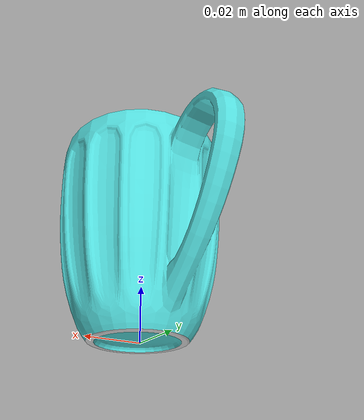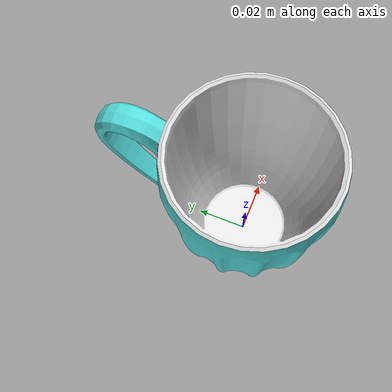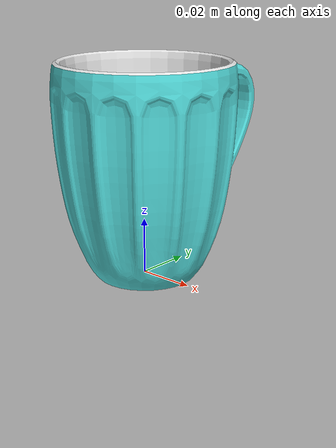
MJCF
<mujoco model="mug_a">
  <default>
    <default class="visual">
      <geom group="1" type="mesh" contype="0" conaffinity="0"/>
    </default>
    <default class="collision">
      <geom group="0" type="mesh" solref="0.01 1" solimp="0.99 0.99 0.01" margin="0.001" priority="1" friction="5 2 0.0001"/>
    </default>
  </default>
  <asset>
    <material name="MugColor5" specular="0.5" shininess="0.5" rgba="0.32 0.8509 0.8509 1.000000"/>
    <material name="MugWhite" specular="0.5" shininess="0.5" rgba="0.896395 0.896395 0.896395 1.000000"/>
    <mesh file="mug_a_0.obj" name="mug_a_0" scale="0.7 0.7 0.7"/>
    <mesh file="mug_a_1.obj" name="mug_a_1" scale="0.7 0.7 0.7"/>
    <mesh file="mug_a_collision_0.obj" name="mug_a_collision_0" scale="0.7 0.7 0.7"/>
    <mesh file="mug_a_collision_1.obj" name="mug_a_collision_1" scale="0.7 0.7 0.7"/>
    <mesh file="mug_a_collision_2.obj" name="mug_a_collision_2" scale="0.7 0.7 0.7"/>
    <mesh file="mug_a_collision_3.obj" name="mug_a_collision_3" scale="0.7 0.7 0.7"/>
    <mesh file="mug_a_collision_4.obj" name="mug_a_collision_4" scale="0.7 0.7 0.7"/>
    <mesh file="mug_a_collision_5.obj" name="mug_a_collision_5" scale="0.7 0.7 0.7"/>
    <mesh file="mug_a_collision_6.obj" name="mug_a_collision_6" scale="0.7 0.7 0.7"/>
    <mesh file="mug_a_collision_7.obj" name="mug_a_collision_7" scale="0.7 0.7 0.7"/>
    <mesh file="mug_a_collision_8.obj" name="mug_a_collision_8" scale="0.7 0.7 0.7"/>
    <mesh file="mug_a_collision_9.obj" name="mug_a_collision_9" scale="0.7 0.7 0.7"/>
    <mesh file="mug_a_collision_10.obj" name="mug_a_collision_10" scale="0.7 0.7 0.7"/>
    <mesh file="mug_a_collision_11.obj" name="mug_a_collision_11" scale="0.7 0.7 0.7"/>
    <mesh file="mug_a_collision_12.obj" name="mug_a_collision_12" scale="0.7 0.7 0.7"/>
    <mesh file="mug_a_collision_13.obj" name="mug_a_collision_13" scale="0.7 0.7 0.7"/>
    <mesh file="mug_a_collision_14.obj" name="mug_a_collision_14" scale="0.7 0.7 0.7"/>
    <mesh file="mug_a_collision_15.obj" name="mug_a_collision_15" scale="0.7 0.7 0.7"/>
    <mesh file="mug_a_collision_16.obj" name="mug_a_collision_16" scale="0.7 0.7 0.7"/>
    <mesh file="mug_a_collision_17.obj" name="mug_a_collision_17" scale="0.7 0.7 0.7"/>
    <mesh file="mug_a_collision_18.obj" name="mug_a_collision_18" scale="0.7 0.7 0.7"/>
    <mesh file="mug_a_collision_19.obj" name="mug_a_collision_19" scale="0.7 0.7 0.7"/>
    <mesh file="mug_a_collision_20.obj" name="mug_a_collision_20" scale="0.7 0.7 0.7"/>
    <mesh file="mug_a_collision_21.obj" name="mug_a_collision_21" scale="0.7 0.7 0.7"/>
    <mesh file="mug_a_collision_22.obj" name="mug_a_collision_22" scale="0.7 0.7 0.7"/>
    <mesh file="mug_a_collision_23.obj" name="mug_a_collision_23" scale="0.7 0.7 0.7"/>
    <mesh file="mug_a_collision_24.obj" name="mug_a_collision_24" scale="0.7 0.7 0.7"/>
    <mesh file="mug_a_collision_25.obj" name="mug_a_collision_25" scale="0.7 0.7 0.7"/>
    <mesh file="mug_a_collision_26.obj" name="mug_a_collision_26" scale="0.7 0.7 0.7"/>
    <mesh file="mug_a_collision_27.obj" name="mug_a_collision_27" scale="0.7 0.7 0.7"/>
    <mesh file="mug_a_collision_28.obj" name="mug_a_collision_28" scale="0.7 0.7 0.7"/>
    <mesh file="mug_a_collision_29.obj" name="mug_a_collision_29" scale="0.7 0.7 0.7"/>
    <mesh file="mug_a_collision_30.obj" name="mug_a_collision_30" scale="0.7 0.7 0.7"/>
    <mesh file="mug_a_collision_31.obj" name="mug_a_collision_31" scale="0.7 0.7 0.7"/>
    <mesh file="mug_a_collision_32.obj" name="mug_a_collision_32" scale="0.7 0.7 0.7"/>
    <mesh file="mug_a_collision_33.obj" name="mug_a_collision_33" scale="0.7 0.7 0.7"/>
    <mesh file="mug_a_collision_34.obj" name="mug_a_collision_34" scale="0.7 0.7 0.7"/>
    <mesh file="mug_a_collision_35.obj" name="mug_a_collision_35" scale="0.7 0.7 0.7"/>
    <mesh file="mug_a_collision_36.obj" name="mug_a_collision_36" scale="0.7 0.7 0.7"/>
    <mesh file="mug_a_collision_37.obj" name="mug_a_collision_37" scale="0.7 0.7 0.7"/>
    <mesh file="mug_a_collision_38.obj" name="mug_a_collision_38" scale="0.7 0.7 0.7"/>
    <mesh file="mug_a_collision_39.obj" name="mug_a_collision_39" scale="0.7 0.7 0.7"/>
    <mesh file="mug_a_collision_40.obj" name="mug_a_collision_40" scale="0.7 0.7 0.7"/>
    <mesh file="mug_a_collision_41.obj" name="mug_a_collision_41" scale="0.7 0.7 0.7"/>
    <mesh file="mug_a_collision_42.obj" name="mug_a_collision_42" scale="0.7 0.7 0.7"/>
    <mesh file="mug_a_collision_43.obj" name="mug_a_collision_43" scale="0.7 0.7 0.7"/>
    <mesh file="mug_a_collision_44.obj" name="mug_a_collision_44" scale="0.7 0.7 0.7"/>
    <mesh file="mug_a_collision_45.obj" name="mug_a_collision_45" scale="0.7 0.7 0.7"/>
    <mesh file="mug_a_collision_46.obj" name="mug_a_collision_46" scale="0.7 0.7 0.7"/>
    <mesh file="mug_a_collision_47.obj" name="mug_a_collision_47" scale="0.7 0.7 0.7"/>
  </asset>
  <worldbody>
    <body name="base" pos="0 0 0">
      <body name="object">
      <geom mesh="mug_a_0" material="MugColor5" class="visual"/>
      <geom mesh="mug_a_1" material="MugWhite" class="visual"/>
      <geom mesh="mug_a_collision_0" rgba="1 0 0 0" class="collision"/>
      <geom mesh="mug_a_collision_1" rgba="1 0 0 0" class="collision"/>
      <geom mesh="mug_a_collision_2" rgba="1 0 0 0" class="collision"/>
      <geom mesh="mug_a_collision_3" rgba="1 0 0 0" class="collision"/>
      <geom mesh="mug_a_collision_4" rgba="1 0 0 0" class="collision"/>
      <geom mesh="mug_a_collision_5" rgba="1 0 0 0" class="collision"/>
      <geom mesh="mug_a_collision_6" rgba="1 0 0 0" class="collision"/>
      <geom mesh="mug_a_collision_7" rgba="1 0 0 0" class="collision"/>
      <geom mesh="mug_a_collision_8" rgba="1 0 0 0" class="collision"/>
      <geom mesh="mug_a_collision_9" rgba="1 0 0 0" class="collision"/>
      <geom mesh="mug_a_collision_10" rgba="1 0 0 0" class="collision"/>
      <geom mesh="mug_a_collision_11" rgba="1 0 0 0" class="collision"/>
      <geom mesh="mug_a_collision_12" rgba="1 0 0 0" class="collision"/>
      <geom mesh="mug_a_collision_13" rgba="1 0 0 0" class="collision"/>
      <geom mesh="mug_a_collision_14" rgba="1 0 0 0" class="collision"/>
      <geom mesh="mug_a_collision_15" rgba="1 0 0 0" class="collision"/>
      <geom mesh="mug_a_collision_16" rgba="1 0 0 0" class="collision"/>
      <geom mesh="mug_a_collision_17" rgba="1 0 0 0" class="collision"/>
      <geom mesh="mug_a_collision_18" rgba="1 0 0 0" class="collision"/>
      <geom mesh="mug_a_collision_19" rgba="1 0 0 0" class="collision"/>
      <geom mesh="mug_a_collision_20" rgba="1 0 0 0" class="collision"/>
      <geom mesh="mug_a_collision_21" rgba="1 0 0 0" class="collision"/>
      <geom mesh="mug_a_collision_22" rgba="1 0 0 0" class="collision"/>
      <geom mesh="mug_a_collision_23" rgba="1 0 0 0" class="collision"/>
      <geom mesh="mug_a_collision_24" rgba="1 0 0 0" class="collision"/>
      <geom mesh="mug_a_collision_25" rgba="1 0 0 0" class="collision"/>
      <geom mesh="mug_a_collision_26" rgba="1 0 0 0" class="collision"/>
      <geom mesh="mug_a_collision_27" rgba="1 0 0 0" class="collision"/>
      <geom mesh="mug_a_collision_28" rgba="1 0 0 0" class="collision"/>
      <geom mesh="mug_a_collision_29" rgba="1 0 0 0" class="collision"/>
      <geom mesh="mug_a_collision_30" rgba="1 0 0 0" class="collision"/>
      <geom mesh="mug_a_collision_31" rgba="1 0 0 0" class="collision"/>
      <geom mesh="mug_a_collision_32" rgba="1 0 0 0" class="collision"/>
      <geom mesh="mug_a_collision_33" rgba="1 0 0 0" class="collision"/>
      <geom mesh="mug_a_collision_34" rgba="1 0 0 0" class="collision"/>
      <geom mesh="mug_a_collision_35" rgba="1 0 0 0" class="collision"/>
      <geom mesh="mug_a_collision_36" rgba="1 0 0 0" class="collision"/>
      <geom mesh="mug_a_collision_37" rgba="1 0 0 0" class="collision"/>
      <geom mesh="mug_a_collision_38" rgba="1 0 0 0" class="collision"/>
      <geom mesh="mug_a_collision_39" rgba="1 0 0 0" class="collision"/>
      <geom mesh="mug_a_collision_40" rgba="1 0 0 0" class="collision"/>
      <geom mesh="mug_a_collision_41" rgba="1 0 0 0" class="collision"/>
      <geom mesh="mug_a_collision_42" rgba="1 0 0 0" class="collision"/>
      <geom mesh="mug_a_collision_43" rgba="1 0 0 0" class="collision"/>
      <geom mesh="mug_a_collision_44" rgba="1 0 0 0" class="collision"/>
      <geom mesh="mug_a_collision_45" rgba="1 0 0 0" class="collision"/>
      <geom mesh="mug_a_collision_46" rgba="1 0 0 0" class="collision"/>
      <geom mesh="mug_a_collision_47" rgba="1 0 0 0" class="collision"/>
      </body>
    </body>
  </worldbody>
</mujoco>
